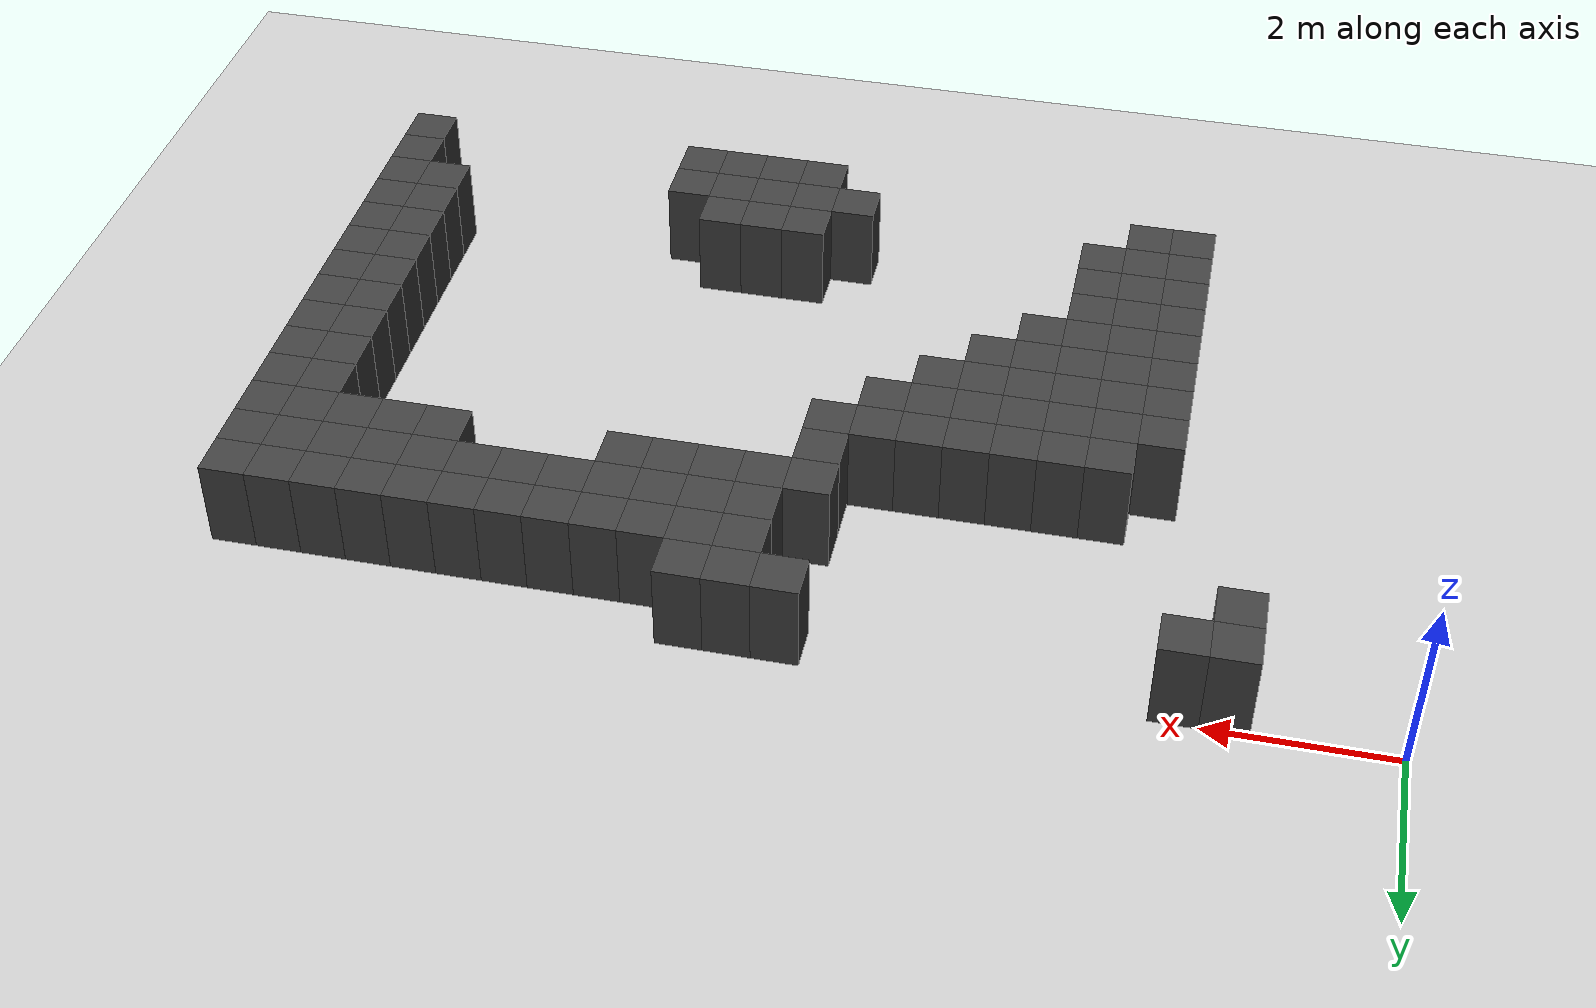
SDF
<sdf version="1.7">
 <world name="map_9405">
  <model name="ground_plane">
   <static>true</static>
   <link name="link">
    <collision name="collision">
     <geometry><plane><normal>0 0 1</normal><size>200 200</size></plane></geometry>
    </collision>
    <visual name="visual">
     <geometry><plane><normal>0 0 1</normal><size>200 200</size></plane></geometry>
     <material><ambient>0.8 0.8 0.8 1</ambient><diffuse>0.8 0.8 0.8 1</diffuse></material>
    </visual>
   </link>
  </model>
  <model name="maze_environment">
   <static>true</static>
   <link name="wall_437">
    <pose>1.750 -0.250 0.500 0 0 0</pose>
    <collision name="col"><geometry><box><size>0.5 0.5 1.0</size></box></geometry></collision>
    <visual name="vis">
     <geometry><box><size>0.5 0.5 1.0</size></box></geometry>
     <material><ambient>0.15 0.15 0.15 1</ambient><diffuse>0.25 0.25 0.25 1</diffuse></material>
    </visual>
   </link>
   <link name="wall_438">
    <pose>2.250 -0.250 0.500 0 0 0</pose>
    <collision name="col"><geometry><box><size>0.5 0.5 1.0</size></box></geometry></collision>
    <visual name="vis">
     <geometry><box><size>0.5 0.5 1.0</size></box></geometry>
     <material><ambient>0.15 0.15 0.15 1</ambient><diffuse>0.25 0.25 0.25 1</diffuse></material>
    </visual>
   </link>
   <link name="wall_439">
    <pose>6.250 -0.250 0.500 0 0 0</pose>
    <collision name="col"><geometry><box><size>0.5 0.5 1.0</size></box></geometry></collision>
    <visual name="vis">
     <geometry><box><size>0.5 0.5 1.0</size></box></geometry>
     <material><ambient>0.15 0.15 0.15 1</ambient><diffuse>0.25 0.25 0.25 1</diffuse></material>
    </visual>
   </link>
   <link name="wall_440">
    <pose>6.750 -0.250 0.500 0 0 0</pose>
    <collision name="col"><geometry><box><size>0.5 0.5 1.0</size></box></geometry></collision>
    <visual name="vis">
     <geometry><box><size>0.5 0.5 1.0</size></box></geometry>
     <material><ambient>0.15 0.15 0.15 1</ambient><diffuse>0.25 0.25 0.25 1</diffuse></material>
    </visual>
   </link>
   <link name="wall_441">
    <pose>7.250 -0.250 0.500 0 0 0</pose>
    <collision name="col"><geometry><box><size>0.5 0.5 1.0</size></box></geometry></collision>
    <visual name="vis">
     <geometry><box><size>0.5 0.5 1.0</size></box></geometry>
     <material><ambient>0.15 0.15 0.15 1</ambient><diffuse>0.25 0.25 0.25 1</diffuse></material>
    </visual>
   </link>
   <link name="wall_464">
    <pose>1.750 -0.750 0.500 0 0 0</pose>
    <collision name="col"><geometry><box><size>0.5 0.5 1.0</size></box></geometry></collision>
    <visual name="vis">
     <geometry><box><size>0.5 0.5 1.0</size></box></geometry>
     <material><ambient>0.15 0.15 0.15 1</ambient><diffuse>0.25 0.25 0.25 1</diffuse></material>
    </visual>
   </link>
   <link name="wall_465">
    <pose>6.750 -0.750 0.500 0 0 0</pose>
    <collision name="col"><geometry><box><size>0.5 0.5 1.0</size></box></geometry></collision>
    <visual name="vis">
     <geometry><box><size>0.5 0.5 1.0</size></box></geometry>
     <material><ambient>0.15 0.15 0.15 1</ambient><diffuse>0.25 0.25 0.25 1</diffuse></material>
    </visual>
   </link>
   <link name="wall_466">
    <pose>7.250 -0.750 0.500 0 0 0</pose>
    <collision name="col"><geometry><box><size>0.5 0.5 1.0</size></box></geometry></collision>
    <visual name="vis">
     <geometry><box><size>0.5 0.5 1.0</size></box></geometry>
     <material><ambient>0.15 0.15 0.15 1</ambient><diffuse>0.25 0.25 0.25 1</diffuse></material>
    </visual>
   </link>
   <link name="wall_467">
    <pose>7.750 -0.750 0.500 0 0 0</pose>
    <collision name="col"><geometry><box><size>0.5 0.5 1.0</size></box></geometry></collision>
    <visual name="vis">
     <geometry><box><size>0.5 0.5 1.0</size></box></geometry>
     <material><ambient>0.15 0.15 0.15 1</ambient><diffuse>0.25 0.25 0.25 1</diffuse></material>
    </visual>
   </link>
   <link name="wall_468">
    <pose>8.250 -0.750 0.500 0 0 0</pose>
    <collision name="col"><geometry><box><size>0.5 0.5 1.0</size></box></geometry></collision>
    <visual name="vis">
     <geometry><box><size>0.5 0.5 1.0</size></box></geometry>
     <material><ambient>0.15 0.15 0.15 1</ambient><diffuse>0.25 0.25 0.25 1</diffuse></material>
    </visual>
   </link>
   <link name="wall_469">
    <pose>8.750 -0.750 0.500 0 0 0</pose>
    <collision name="col"><geometry><box><size>0.5 0.5 1.0</size></box></geometry></collision>
    <visual name="vis">
     <geometry><box><size>0.5 0.5 1.0</size></box></geometry>
     <material><ambient>0.15 0.15 0.15 1</ambient><diffuse>0.25 0.25 0.25 1</diffuse></material>
    </visual>
   </link>
   <link name="wall_470">
    <pose>9.250 -0.750 0.500 0 0 0</pose>
    <collision name="col"><geometry><box><size>0.5 0.5 1.0</size></box></geometry></collision>
    <visual name="vis">
     <geometry><box><size>0.5 0.5 1.0</size></box></geometry>
     <material><ambient>0.15 0.15 0.15 1</ambient><diffuse>0.25 0.25 0.25 1</diffuse></material>
    </visual>
   </link>
   <link name="wall_471">
    <pose>9.750 -0.750 0.500 0 0 0</pose>
    <collision name="col"><geometry><box><size>0.5 0.5 1.0</size></box></geometry></collision>
    <visual name="vis">
     <geometry><box><size>0.5 0.5 1.0</size></box></geometry>
     <material><ambient>0.15 0.15 0.15 1</ambient><diffuse>0.25 0.25 0.25 1</diffuse></material>
    </visual>
   </link>
   <link name="wall_472">
    <pose>10.250 -0.750 0.500 0 0 0</pose>
    <collision name="col"><geometry><box><size>0.5 0.5 1.0</size></box></geometry></collision>
    <visual name="vis">
     <geometry><box><size>0.5 0.5 1.0</size></box></geometry>
     <material><ambient>0.15 0.15 0.15 1</ambient><diffuse>0.25 0.25 0.25 1</diffuse></material>
    </visual>
   </link>
   <link name="wall_473">
    <pose>10.750 -0.750 0.500 0 0 0</pose>
    <collision name="col"><geometry><box><size>0.5 0.5 1.0</size></box></geometry></collision>
    <visual name="vis">
     <geometry><box><size>0.5 0.5 1.0</size></box></geometry>
     <material><ambient>0.15 0.15 0.15 1</ambient><diffuse>0.25 0.25 0.25 1</diffuse></material>
    </visual>
   </link>
   <link name="wall_474">
    <pose>11.250 -0.750 0.500 0 0 0</pose>
    <collision name="col"><geometry><box><size>0.5 0.5 1.0</size></box></geometry></collision>
    <visual name="vis">
     <geometry><box><size>0.5 0.5 1.0</size></box></geometry>
     <material><ambient>0.15 0.15 0.15 1</ambient><diffuse>0.25 0.25 0.25 1</diffuse></material>
    </visual>
   </link>
   <link name="wall_475">
    <pose>11.750 -0.750 0.500 0 0 0</pose>
    <collision name="col"><geometry><box><size>0.5 0.5 1.0</size></box></geometry></collision>
    <visual name="vis">
     <geometry><box><size>0.5 0.5 1.0</size></box></geometry>
     <material><ambient>0.15 0.15 0.15 1</ambient><diffuse>0.25 0.25 0.25 1</diffuse></material>
    </visual>
   </link>
   <link name="wall_476">
    <pose>12.250 -0.750 0.500 0 0 0</pose>
    <collision name="col"><geometry><box><size>0.5 0.5 1.0</size></box></geometry></collision>
    <visual name="vis">
     <geometry><box><size>0.5 0.5 1.0</size></box></geometry>
     <material><ambient>0.15 0.15 0.15 1</ambient><diffuse>0.25 0.25 0.25 1</diffuse></material>
    </visual>
   </link>
   <link name="wall_489">
    <pose>6.750 -1.250 0.500 0 0 0</pose>
    <collision name="col"><geometry><box><size>0.5 0.5 1.0</size></box></geometry></collision>
    <visual name="vis">
     <geometry><box><size>0.5 0.5 1.0</size></box></geometry>
     <material><ambient>0.15 0.15 0.15 1</ambient><diffuse>0.25 0.25 0.25 1</diffuse></material>
    </visual>
   </link>
   <link name="wall_490">
    <pose>7.250 -1.250 0.500 0 0 0</pose>
    <collision name="col"><geometry><box><size>0.5 0.5 1.0</size></box></geometry></collision>
    <visual name="vis">
     <geometry><box><size>0.5 0.5 1.0</size></box></geometry>
     <material><ambient>0.15 0.15 0.15 1</ambient><diffuse>0.25 0.25 0.25 1</diffuse></material>
    </visual>
   </link>
   <link name="wall_491">
    <pose>7.750 -1.250 0.500 0 0 0</pose>
    <collision name="col"><geometry><box><size>0.5 0.5 1.0</size></box></geometry></collision>
    <visual name="vis">
     <geometry><box><size>0.5 0.5 1.0</size></box></geometry>
     <material><ambient>0.15 0.15 0.15 1</ambient><diffuse>0.25 0.25 0.25 1</diffuse></material>
    </visual>
   </link>
   <link name="wall_492">
    <pose>8.250 -1.250 0.500 0 0 0</pose>
    <collision name="col"><geometry><box><size>0.5 0.5 1.0</size></box></geometry></collision>
    <visual name="vis">
     <geometry><box><size>0.5 0.5 1.0</size></box></geometry>
     <material><ambient>0.15 0.15 0.15 1</ambient><diffuse>0.25 0.25 0.25 1</diffuse></material>
    </visual>
   </link>
   <link name="wall_493">
    <pose>8.750 -1.250 0.500 0 0 0</pose>
    <collision name="col"><geometry><box><size>0.5 0.5 1.0</size></box></geometry></collision>
    <visual name="vis">
     <geometry><box><size>0.5 0.5 1.0</size></box></geometry>
     <material><ambient>0.15 0.15 0.15 1</ambient><diffuse>0.25 0.25 0.25 1</diffuse></material>
    </visual>
   </link>
   <link name="wall_494">
    <pose>9.250 -1.250 0.500 0 0 0</pose>
    <collision name="col"><geometry><box><size>0.5 0.5 1.0</size></box></geometry></collision>
    <visual name="vis">
     <geometry><box><size>0.5 0.5 1.0</size></box></geometry>
     <material><ambient>0.15 0.15 0.15 1</ambient><diffuse>0.25 0.25 0.25 1</diffuse></material>
    </visual>
   </link>
   <link name="wall_495">
    <pose>9.750 -1.250 0.500 0 0 0</pose>
    <collision name="col"><geometry><box><size>0.5 0.5 1.0</size></box></geometry></collision>
    <visual name="vis">
     <geometry><box><size>0.5 0.5 1.0</size></box></geometry>
     <material><ambient>0.15 0.15 0.15 1</ambient><diffuse>0.25 0.25 0.25 1</diffuse></material>
    </visual>
   </link>
   <link name="wall_496">
    <pose>10.250 -1.250 0.500 0 0 0</pose>
    <collision name="col"><geometry><box><size>0.5 0.5 1.0</size></box></geometry></collision>
    <visual name="vis">
     <geometry><box><size>0.5 0.5 1.0</size></box></geometry>
     <material><ambient>0.15 0.15 0.15 1</ambient><diffuse>0.25 0.25 0.25 1</diffuse></material>
    </visual>
   </link>
   <link name="wall_497">
    <pose>10.750 -1.250 0.500 0 0 0</pose>
    <collision name="col"><geometry><box><size>0.5 0.5 1.0</size></box></geometry></collision>
    <visual name="vis">
     <geometry><box><size>0.5 0.5 1.0</size></box></geometry>
     <material><ambient>0.15 0.15 0.15 1</ambient><diffuse>0.25 0.25 0.25 1</diffuse></material>
    </visual>
   </link>
   <link name="wall_498">
    <pose>11.250 -1.250 0.500 0 0 0</pose>
    <collision name="col"><geometry><box><size>0.5 0.5 1.0</size></box></geometry></collision>
    <visual name="vis">
     <geometry><box><size>0.5 0.5 1.0</size></box></geometry>
     <material><ambient>0.15 0.15 0.15 1</ambient><diffuse>0.25 0.25 0.25 1</diffuse></material>
    </visual>
   </link>
   <link name="wall_499">
    <pose>11.750 -1.250 0.500 0 0 0</pose>
    <collision name="col"><geometry><box><size>0.5 0.5 1.0</size></box></geometry></collision>
    <visual name="vis">
     <geometry><box><size>0.5 0.5 1.0</size></box></geometry>
     <material><ambient>0.15 0.15 0.15 1</ambient><diffuse>0.25 0.25 0.25 1</diffuse></material>
    </visual>
   </link>
   <link name="wall_500">
    <pose>12.250 -1.250 0.500 0 0 0</pose>
    <collision name="col"><geometry><box><size>0.5 0.5 1.0</size></box></geometry></collision>
    <visual name="vis">
     <geometry><box><size>0.5 0.5 1.0</size></box></geometry>
     <material><ambient>0.15 0.15 0.15 1</ambient><diffuse>0.25 0.25 0.25 1</diffuse></material>
    </visual>
   </link>
   <link name="wall_507">
    <pose>6.250 -1.750 0.500 0 0 0</pose>
    <collision name="col"><geometry><box><size>0.5 0.5 1.0</size></box></geometry></collision>
    <visual name="vis">
     <geometry><box><size>0.5 0.5 1.0</size></box></geometry>
     <material><ambient>0.15 0.15 0.15 1</ambient><diffuse>0.25 0.25 0.25 1</diffuse></material>
    </visual>
   </link>
   <link name="wall_508">
    <pose>6.750 -1.750 0.500 0 0 0</pose>
    <collision name="col"><geometry><box><size>0.5 0.5 1.0</size></box></geometry></collision>
    <visual name="vis">
     <geometry><box><size>0.5 0.5 1.0</size></box></geometry>
     <material><ambient>0.15 0.15 0.15 1</ambient><diffuse>0.25 0.25 0.25 1</diffuse></material>
    </visual>
   </link>
   <link name="wall_509">
    <pose>7.250 -1.750 0.500 0 0 0</pose>
    <collision name="col"><geometry><box><size>0.5 0.5 1.0</size></box></geometry></collision>
    <visual name="vis">
     <geometry><box><size>0.5 0.5 1.0</size></box></geometry>
     <material><ambient>0.15 0.15 0.15 1</ambient><diffuse>0.25 0.25 0.25 1</diffuse></material>
    </visual>
   </link>
   <link name="wall_510">
    <pose>7.750 -1.750 0.500 0 0 0</pose>
    <collision name="col"><geometry><box><size>0.5 0.5 1.0</size></box></geometry></collision>
    <visual name="vis">
     <geometry><box><size>0.5 0.5 1.0</size></box></geometry>
     <material><ambient>0.15 0.15 0.15 1</ambient><diffuse>0.25 0.25 0.25 1</diffuse></material>
    </visual>
   </link>
   <link name="wall_511">
    <pose>8.250 -1.750 0.500 0 0 0</pose>
    <collision name="col"><geometry><box><size>0.5 0.5 1.0</size></box></geometry></collision>
    <visual name="vis">
     <geometry><box><size>0.5 0.5 1.0</size></box></geometry>
     <material><ambient>0.15 0.15 0.15 1</ambient><diffuse>0.25 0.25 0.25 1</diffuse></material>
    </visual>
   </link>
   <link name="wall_512">
    <pose>10.250 -1.750 0.500 0 0 0</pose>
    <collision name="col"><geometry><box><size>0.5 0.5 1.0</size></box></geometry></collision>
    <visual name="vis">
     <geometry><box><size>0.5 0.5 1.0</size></box></geometry>
     <material><ambient>0.15 0.15 0.15 1</ambient><diffuse>0.25 0.25 0.25 1</diffuse></material>
    </visual>
   </link>
   <link name="wall_513">
    <pose>10.750 -1.750 0.500 0 0 0</pose>
    <collision name="col"><geometry><box><size>0.5 0.5 1.0</size></box></geometry></collision>
    <visual name="vis">
     <geometry><box><size>0.5 0.5 1.0</size></box></geometry>
     <material><ambient>0.15 0.15 0.15 1</ambient><diffuse>0.25 0.25 0.25 1</diffuse></material>
    </visual>
   </link>
   <link name="wall_514">
    <pose>11.250 -1.750 0.500 0 0 0</pose>
    <collision name="col"><geometry><box><size>0.5 0.5 1.0</size></box></geometry></collision>
    <visual name="vis">
     <geometry><box><size>0.5 0.5 1.0</size></box></geometry>
     <material><ambient>0.15 0.15 0.15 1</ambient><diffuse>0.25 0.25 0.25 1</diffuse></material>
    </visual>
   </link>
   <link name="wall_515">
    <pose>11.750 -1.750 0.500 0 0 0</pose>
    <collision name="col"><geometry><box><size>0.5 0.5 1.0</size></box></geometry></collision>
    <visual name="vis">
     <geometry><box><size>0.5 0.5 1.0</size></box></geometry>
     <material><ambient>0.15 0.15 0.15 1</ambient><diffuse>0.25 0.25 0.25 1</diffuse></material>
    </visual>
   </link>
   <link name="wall_516">
    <pose>12.250 -1.750 0.500 0 0 0</pose>
    <collision name="col"><geometry><box><size>0.5 0.5 1.0</size></box></geometry></collision>
    <visual name="vis">
     <geometry><box><size>0.5 0.5 1.0</size></box></geometry>
     <material><ambient>0.15 0.15 0.15 1</ambient><diffuse>0.25 0.25 0.25 1</diffuse></material>
    </visual>
   </link>
   <link name="wall_523">
    <pose>6.250 -2.250 0.500 0 0 0</pose>
    <collision name="col"><geometry><box><size>0.5 0.5 1.0</size></box></geometry></collision>
    <visual name="vis">
     <geometry><box><size>0.5 0.5 1.0</size></box></geometry>
     <material><ambient>0.15 0.15 0.15 1</ambient><diffuse>0.25 0.25 0.25 1</diffuse></material>
    </visual>
   </link>
   <link name="wall_524">
    <pose>11.750 -2.250 0.500 0 0 0</pose>
    <collision name="col"><geometry><box><size>0.5 0.5 1.0</size></box></geometry></collision>
    <visual name="vis">
     <geometry><box><size>0.5 0.5 1.0</size></box></geometry>
     <material><ambient>0.15 0.15 0.15 1</ambient><diffuse>0.25 0.25 0.25 1</diffuse></material>
    </visual>
   </link>
   <link name="wall_525">
    <pose>12.250 -2.250 0.500 0 0 0</pose>
    <collision name="col"><geometry><box><size>0.5 0.5 1.0</size></box></geometry></collision>
    <visual name="vis">
     <geometry><box><size>0.5 0.5 1.0</size></box></geometry>
     <material><ambient>0.15 0.15 0.15 1</ambient><diffuse>0.25 0.25 0.25 1</diffuse></material>
    </visual>
   </link>
   <link name="wall_535">
    <pose>3.250 -2.750 0.500 0 0 0</pose>
    <collision name="col"><geometry><box><size>0.5 0.5 1.0</size></box></geometry></collision>
    <visual name="vis">
     <geometry><box><size>0.5 0.5 1.0</size></box></geometry>
     <material><ambient>0.15 0.15 0.15 1</ambient><diffuse>0.25 0.25 0.25 1</diffuse></material>
    </visual>
   </link>
   <link name="wall_536">
    <pose>3.750 -2.750 0.500 0 0 0</pose>
    <collision name="col"><geometry><box><size>0.5 0.5 1.0</size></box></geometry></collision>
    <visual name="vis">
     <geometry><box><size>0.5 0.5 1.0</size></box></geometry>
     <material><ambient>0.15 0.15 0.15 1</ambient><diffuse>0.25 0.25 0.25 1</diffuse></material>
    </visual>
   </link>
   <link name="wall_537">
    <pose>4.250 -2.750 0.500 0 0 0</pose>
    <collision name="col"><geometry><box><size>0.5 0.5 1.0</size></box></geometry></collision>
    <visual name="vis">
     <geometry><box><size>0.5 0.5 1.0</size></box></geometry>
     <material><ambient>0.15 0.15 0.15 1</ambient><diffuse>0.25 0.25 0.25 1</diffuse></material>
    </visual>
   </link>
   <link name="wall_538">
    <pose>4.750 -2.750 0.500 0 0 0</pose>
    <collision name="col"><geometry><box><size>0.5 0.5 1.0</size></box></geometry></collision>
    <visual name="vis">
     <geometry><box><size>0.5 0.5 1.0</size></box></geometry>
     <material><ambient>0.15 0.15 0.15 1</ambient><diffuse>0.25 0.25 0.25 1</diffuse></material>
    </visual>
   </link>
   <link name="wall_539">
    <pose>5.250 -2.750 0.500 0 0 0</pose>
    <collision name="col"><geometry><box><size>0.5 0.5 1.0</size></box></geometry></collision>
    <visual name="vis">
     <geometry><box><size>0.5 0.5 1.0</size></box></geometry>
     <material><ambient>0.15 0.15 0.15 1</ambient><diffuse>0.25 0.25 0.25 1</diffuse></material>
    </visual>
   </link>
   <link name="wall_540">
    <pose>5.750 -2.750 0.500 0 0 0</pose>
    <collision name="col"><geometry><box><size>0.5 0.5 1.0</size></box></geometry></collision>
    <visual name="vis">
     <geometry><box><size>0.5 0.5 1.0</size></box></geometry>
     <material><ambient>0.15 0.15 0.15 1</ambient><diffuse>0.25 0.25 0.25 1</diffuse></material>
    </visual>
   </link>
   <link name="wall_541">
    <pose>6.250 -2.750 0.500 0 0 0</pose>
    <collision name="col"><geometry><box><size>0.5 0.5 1.0</size></box></geometry></collision>
    <visual name="vis">
     <geometry><box><size>0.5 0.5 1.0</size></box></geometry>
     <material><ambient>0.15 0.15 0.15 1</ambient><diffuse>0.25 0.25 0.25 1</diffuse></material>
    </visual>
   </link>
   <link name="wall_542">
    <pose>11.750 -2.750 0.500 0 0 0</pose>
    <collision name="col"><geometry><box><size>0.5 0.5 1.0</size></box></geometry></collision>
    <visual name="vis">
     <geometry><box><size>0.5 0.5 1.0</size></box></geometry>
     <material><ambient>0.15 0.15 0.15 1</ambient><diffuse>0.25 0.25 0.25 1</diffuse></material>
    </visual>
   </link>
   <link name="wall_543">
    <pose>12.250 -2.750 0.500 0 0 0</pose>
    <collision name="col"><geometry><box><size>0.5 0.5 1.0</size></box></geometry></collision>
    <visual name="vis">
     <geometry><box><size>0.5 0.5 1.0</size></box></geometry>
     <material><ambient>0.15 0.15 0.15 1</ambient><diffuse>0.25 0.25 0.25 1</diffuse></material>
    </visual>
   </link>
   <link name="wall_552">
    <pose>2.750 -3.250 0.500 0 0 0</pose>
    <collision name="col"><geometry><box><size>0.5 0.5 1.0</size></box></geometry></collision>
    <visual name="vis">
     <geometry><box><size>0.5 0.5 1.0</size></box></geometry>
     <material><ambient>0.15 0.15 0.15 1</ambient><diffuse>0.25 0.25 0.25 1</diffuse></material>
    </visual>
   </link>
   <link name="wall_553">
    <pose>3.250 -3.250 0.500 0 0 0</pose>
    <collision name="col"><geometry><box><size>0.5 0.5 1.0</size></box></geometry></collision>
    <visual name="vis">
     <geometry><box><size>0.5 0.5 1.0</size></box></geometry>
     <material><ambient>0.15 0.15 0.15 1</ambient><diffuse>0.25 0.25 0.25 1</diffuse></material>
    </visual>
   </link>
   <link name="wall_554">
    <pose>3.750 -3.250 0.500 0 0 0</pose>
    <collision name="col"><geometry><box><size>0.5 0.5 1.0</size></box></geometry></collision>
    <visual name="vis">
     <geometry><box><size>0.5 0.5 1.0</size></box></geometry>
     <material><ambient>0.15 0.15 0.15 1</ambient><diffuse>0.25 0.25 0.25 1</diffuse></material>
    </visual>
   </link>
   <link name="wall_555">
    <pose>4.250 -3.250 0.500 0 0 0</pose>
    <collision name="col"><geometry><box><size>0.5 0.5 1.0</size></box></geometry></collision>
    <visual name="vis">
     <geometry><box><size>0.5 0.5 1.0</size></box></geometry>
     <material><ambient>0.15 0.15 0.15 1</ambient><diffuse>0.25 0.25 0.25 1</diffuse></material>
    </visual>
   </link>
   <link name="wall_556">
    <pose>4.750 -3.250 0.500 0 0 0</pose>
    <collision name="col"><geometry><box><size>0.5 0.5 1.0</size></box></geometry></collision>
    <visual name="vis">
     <geometry><box><size>0.5 0.5 1.0</size></box></geometry>
     <material><ambient>0.15 0.15 0.15 1</ambient><diffuse>0.25 0.25 0.25 1</diffuse></material>
    </visual>
   </link>
   <link name="wall_557">
    <pose>5.250 -3.250 0.500 0 0 0</pose>
    <collision name="col"><geometry><box><size>0.5 0.5 1.0</size></box></geometry></collision>
    <visual name="vis">
     <geometry><box><size>0.5 0.5 1.0</size></box></geometry>
     <material><ambient>0.15 0.15 0.15 1</ambient><diffuse>0.25 0.25 0.25 1</diffuse></material>
    </visual>
   </link>
   <link name="wall_558">
    <pose>5.750 -3.250 0.500 0 0 0</pose>
    <collision name="col"><geometry><box><size>0.5 0.5 1.0</size></box></geometry></collision>
    <visual name="vis">
     <geometry><box><size>0.5 0.5 1.0</size></box></geometry>
     <material><ambient>0.15 0.15 0.15 1</ambient><diffuse>0.25 0.25 0.25 1</diffuse></material>
    </visual>
   </link>
   <link name="wall_559">
    <pose>11.750 -3.250 0.500 0 0 0</pose>
    <collision name="col"><geometry><box><size>0.5 0.5 1.0</size></box></geometry></collision>
    <visual name="vis">
     <geometry><box><size>0.5 0.5 1.0</size></box></geometry>
     <material><ambient>0.15 0.15 0.15 1</ambient><diffuse>0.25 0.25 0.25 1</diffuse></material>
    </visual>
   </link>
   <link name="wall_560">
    <pose>12.250 -3.250 0.500 0 0 0</pose>
    <collision name="col"><geometry><box><size>0.5 0.5 1.0</size></box></geometry></collision>
    <visual name="vis">
     <geometry><box><size>0.5 0.5 1.0</size></box></geometry>
     <material><ambient>0.15 0.15 0.15 1</ambient><diffuse>0.25 0.25 0.25 1</diffuse></material>
    </visual>
   </link>
   <link name="wall_570">
    <pose>2.750 -3.750 0.500 0 0 0</pose>
    <collision name="col"><geometry><box><size>0.5 0.5 1.0</size></box></geometry></collision>
    <visual name="vis">
     <geometry><box><size>0.5 0.5 1.0</size></box></geometry>
     <material><ambient>0.15 0.15 0.15 1</ambient><diffuse>0.25 0.25 0.25 1</diffuse></material>
    </visual>
   </link>
   <link name="wall_571">
    <pose>3.250 -3.750 0.500 0 0 0</pose>
    <collision name="col"><geometry><box><size>0.5 0.5 1.0</size></box></geometry></collision>
    <visual name="vis">
     <geometry><box><size>0.5 0.5 1.0</size></box></geometry>
     <material><ambient>0.15 0.15 0.15 1</ambient><diffuse>0.25 0.25 0.25 1</diffuse></material>
    </visual>
   </link>
   <link name="wall_572">
    <pose>3.750 -3.750 0.500 0 0 0</pose>
    <collision name="col"><geometry><box><size>0.5 0.5 1.0</size></box></geometry></collision>
    <visual name="vis">
     <geometry><box><size>0.5 0.5 1.0</size></box></geometry>
     <material><ambient>0.15 0.15 0.15 1</ambient><diffuse>0.25 0.25 0.25 1</diffuse></material>
    </visual>
   </link>
   <link name="wall_573">
    <pose>4.250 -3.750 0.500 0 0 0</pose>
    <collision name="col"><geometry><box><size>0.5 0.5 1.0</size></box></geometry></collision>
    <visual name="vis">
     <geometry><box><size>0.5 0.5 1.0</size></box></geometry>
     <material><ambient>0.15 0.15 0.15 1</ambient><diffuse>0.25 0.25 0.25 1</diffuse></material>
    </visual>
   </link>
   <link name="wall_574">
    <pose>4.750 -3.750 0.500 0 0 0</pose>
    <collision name="col"><geometry><box><size>0.5 0.5 1.0</size></box></geometry></collision>
    <visual name="vis">
     <geometry><box><size>0.5 0.5 1.0</size></box></geometry>
     <material><ambient>0.15 0.15 0.15 1</ambient><diffuse>0.25 0.25 0.25 1</diffuse></material>
    </visual>
   </link>
   <link name="wall_575">
    <pose>5.250 -3.750 0.500 0 0 0</pose>
    <collision name="col"><geometry><box><size>0.5 0.5 1.0</size></box></geometry></collision>
    <visual name="vis">
     <geometry><box><size>0.5 0.5 1.0</size></box></geometry>
     <material><ambient>0.15 0.15 0.15 1</ambient><diffuse>0.25 0.25 0.25 1</diffuse></material>
    </visual>
   </link>
   <link name="wall_576">
    <pose>11.750 -3.750 0.500 0 0 0</pose>
    <collision name="col"><geometry><box><size>0.5 0.5 1.0</size></box></geometry></collision>
    <visual name="vis">
     <geometry><box><size>0.5 0.5 1.0</size></box></geometry>
     <material><ambient>0.15 0.15 0.15 1</ambient><diffuse>0.25 0.25 0.25 1</diffuse></material>
    </visual>
   </link>
   <link name="wall_577">
    <pose>12.250 -3.750 0.500 0 0 0</pose>
    <collision name="col"><geometry><box><size>0.5 0.5 1.0</size></box></geometry></collision>
    <visual name="vis">
     <geometry><box><size>0.5 0.5 1.0</size></box></geometry>
     <material><ambient>0.15 0.15 0.15 1</ambient><diffuse>0.25 0.25 0.25 1</diffuse></material>
    </visual>
   </link>
   <link name="wall_585">
    <pose>2.750 -4.250 0.500 0 0 0</pose>
    <collision name="col"><geometry><box><size>0.5 0.5 1.0</size></box></geometry></collision>
    <visual name="vis">
     <geometry><box><size>0.5 0.5 1.0</size></box></geometry>
     <material><ambient>0.15 0.15 0.15 1</ambient><diffuse>0.25 0.25 0.25 1</diffuse></material>
    </visual>
   </link>
   <link name="wall_586">
    <pose>3.250 -4.250 0.500 0 0 0</pose>
    <collision name="col"><geometry><box><size>0.5 0.5 1.0</size></box></geometry></collision>
    <visual name="vis">
     <geometry><box><size>0.5 0.5 1.0</size></box></geometry>
     <material><ambient>0.15 0.15 0.15 1</ambient><diffuse>0.25 0.25 0.25 1</diffuse></material>
    </visual>
   </link>
   <link name="wall_587">
    <pose>3.750 -4.250 0.500 0 0 0</pose>
    <collision name="col"><geometry><box><size>0.5 0.5 1.0</size></box></geometry></collision>
    <visual name="vis">
     <geometry><box><size>0.5 0.5 1.0</size></box></geometry>
     <material><ambient>0.15 0.15 0.15 1</ambient><diffuse>0.25 0.25 0.25 1</diffuse></material>
    </visual>
   </link>
   <link name="wall_588">
    <pose>4.250 -4.250 0.500 0 0 0</pose>
    <collision name="col"><geometry><box><size>0.5 0.5 1.0</size></box></geometry></collision>
    <visual name="vis">
     <geometry><box><size>0.5 0.5 1.0</size></box></geometry>
     <material><ambient>0.15 0.15 0.15 1</ambient><diffuse>0.25 0.25 0.25 1</diffuse></material>
    </visual>
   </link>
   <link name="wall_589">
    <pose>4.750 -4.250 0.500 0 0 0</pose>
    <collision name="col"><geometry><box><size>0.5 0.5 1.0</size></box></geometry></collision>
    <visual name="vis">
     <geometry><box><size>0.5 0.5 1.0</size></box></geometry>
     <material><ambient>0.15 0.15 0.15 1</ambient><diffuse>0.25 0.25 0.25 1</diffuse></material>
    </visual>
   </link>
   <link name="wall_590">
    <pose>11.750 -4.250 0.500 0 0 0</pose>
    <collision name="col"><geometry><box><size>0.5 0.5 1.0</size></box></geometry></collision>
    <visual name="vis">
     <geometry><box><size>0.5 0.5 1.0</size></box></geometry>
     <material><ambient>0.15 0.15 0.15 1</ambient><diffuse>0.25 0.25 0.25 1</diffuse></material>
    </visual>
   </link>
   <link name="wall_591">
    <pose>12.250 -4.250 0.500 0 0 0</pose>
    <collision name="col"><geometry><box><size>0.5 0.5 1.0</size></box></geometry></collision>
    <visual name="vis">
     <geometry><box><size>0.5 0.5 1.0</size></box></geometry>
     <material><ambient>0.15 0.15 0.15 1</ambient><diffuse>0.25 0.25 0.25 1</diffuse></material>
    </visual>
   </link>
   <link name="wall_597">
    <pose>2.750 -4.750 0.500 0 0 0</pose>
    <collision name="col"><geometry><box><size>0.5 0.5 1.0</size></box></geometry></collision>
    <visual name="vis">
     <geometry><box><size>0.5 0.5 1.0</size></box></geometry>
     <material><ambient>0.15 0.15 0.15 1</ambient><diffuse>0.25 0.25 0.25 1</diffuse></material>
    </visual>
   </link>
   <link name="wall_598">
    <pose>3.250 -4.750 0.500 0 0 0</pose>
    <collision name="col"><geometry><box><size>0.5 0.5 1.0</size></box></geometry></collision>
    <visual name="vis">
     <geometry><box><size>0.5 0.5 1.0</size></box></geometry>
     <material><ambient>0.15 0.15 0.15 1</ambient><diffuse>0.25 0.25 0.25 1</diffuse></material>
    </visual>
   </link>
   <link name="wall_599">
    <pose>3.750 -4.750 0.500 0 0 0</pose>
    <collision name="col"><geometry><box><size>0.5 0.5 1.0</size></box></geometry></collision>
    <visual name="vis">
     <geometry><box><size>0.5 0.5 1.0</size></box></geometry>
     <material><ambient>0.15 0.15 0.15 1</ambient><diffuse>0.25 0.25 0.25 1</diffuse></material>
    </visual>
   </link>
   <link name="wall_600">
    <pose>4.250 -4.750 0.500 0 0 0</pose>
    <collision name="col"><geometry><box><size>0.5 0.5 1.0</size></box></geometry></collision>
    <visual name="vis">
     <geometry><box><size>0.5 0.5 1.0</size></box></geometry>
     <material><ambient>0.15 0.15 0.15 1</ambient><diffuse>0.25 0.25 0.25 1</diffuse></material>
    </visual>
   </link>
   <link name="wall_601">
    <pose>11.750 -4.750 0.500 0 0 0</pose>
    <collision name="col"><geometry><box><size>0.5 0.5 1.0</size></box></geometry></collision>
    <visual name="vis">
     <geometry><box><size>0.5 0.5 1.0</size></box></geometry>
     <material><ambient>0.15 0.15 0.15 1</ambient><diffuse>0.25 0.25 0.25 1</diffuse></material>
    </visual>
   </link>
   <link name="wall_602">
    <pose>12.250 -4.750 0.500 0 0 0</pose>
    <collision name="col"><geometry><box><size>0.5 0.5 1.0</size></box></geometry></collision>
    <visual name="vis">
     <geometry><box><size>0.5 0.5 1.0</size></box></geometry>
     <material><ambient>0.15 0.15 0.15 1</ambient><diffuse>0.25 0.25 0.25 1</diffuse></material>
    </visual>
   </link>
   <link name="wall_608">
    <pose>2.750 -5.250 0.500 0 0 0</pose>
    <collision name="col"><geometry><box><size>0.5 0.5 1.0</size></box></geometry></collision>
    <visual name="vis">
     <geometry><box><size>0.5 0.5 1.0</size></box></geometry>
     <material><ambient>0.15 0.15 0.15 1</ambient><diffuse>0.25 0.25 0.25 1</diffuse></material>
    </visual>
   </link>
   <link name="wall_609">
    <pose>3.250 -5.250 0.500 0 0 0</pose>
    <collision name="col"><geometry><box><size>0.5 0.5 1.0</size></box></geometry></collision>
    <visual name="vis">
     <geometry><box><size>0.5 0.5 1.0</size></box></geometry>
     <material><ambient>0.15 0.15 0.15 1</ambient><diffuse>0.25 0.25 0.25 1</diffuse></material>
    </visual>
   </link>
   <link name="wall_610">
    <pose>3.750 -5.250 0.500 0 0 0</pose>
    <collision name="col"><geometry><box><size>0.5 0.5 1.0</size></box></geometry></collision>
    <visual name="vis">
     <geometry><box><size>0.5 0.5 1.0</size></box></geometry>
     <material><ambient>0.15 0.15 0.15 1</ambient><diffuse>0.25 0.25 0.25 1</diffuse></material>
    </visual>
   </link>
   <link name="wall_611">
    <pose>11.750 -5.250 0.500 0 0 0</pose>
    <collision name="col"><geometry><box><size>0.5 0.5 1.0</size></box></geometry></collision>
    <visual name="vis">
     <geometry><box><size>0.5 0.5 1.0</size></box></geometry>
     <material><ambient>0.15 0.15 0.15 1</ambient><diffuse>0.25 0.25 0.25 1</diffuse></material>
    </visual>
   </link>
   <link name="wall_612">
    <pose>12.250 -5.250 0.500 0 0 0</pose>
    <collision name="col"><geometry><box><size>0.5 0.5 1.0</size></box></geometry></collision>
    <visual name="vis">
     <geometry><box><size>0.5 0.5 1.0</size></box></geometry>
     <material><ambient>0.15 0.15 0.15 1</ambient><diffuse>0.25 0.25 0.25 1</diffuse></material>
    </visual>
   </link>
   <link name="wall_619">
    <pose>2.750 -5.750 0.500 0 0 0</pose>
    <collision name="col"><geometry><box><size>0.5 0.5 1.0</size></box></geometry></collision>
    <visual name="vis">
     <geometry><box><size>0.5 0.5 1.0</size></box></geometry>
     <material><ambient>0.15 0.15 0.15 1</ambient><diffuse>0.25 0.25 0.25 1</diffuse></material>
    </visual>
   </link>
   <link name="wall_620">
    <pose>3.250 -5.750 0.500 0 0 0</pose>
    <collision name="col"><geometry><box><size>0.5 0.5 1.0</size></box></geometry></collision>
    <visual name="vis">
     <geometry><box><size>0.5 0.5 1.0</size></box></geometry>
     <material><ambient>0.15 0.15 0.15 1</ambient><diffuse>0.25 0.25 0.25 1</diffuse></material>
    </visual>
   </link>
   <link name="wall_621">
    <pose>3.750 -5.750 0.500 0 0 0</pose>
    <collision name="col"><geometry><box><size>0.5 0.5 1.0</size></box></geometry></collision>
    <visual name="vis">
     <geometry><box><size>0.5 0.5 1.0</size></box></geometry>
     <material><ambient>0.15 0.15 0.15 1</ambient><diffuse>0.25 0.25 0.25 1</diffuse></material>
    </visual>
   </link>
   <link name="wall_622">
    <pose>11.750 -5.750 0.500 0 0 0</pose>
    <collision name="col"><geometry><box><size>0.5 0.5 1.0</size></box></geometry></collision>
    <visual name="vis">
     <geometry><box><size>0.5 0.5 1.0</size></box></geometry>
     <material><ambient>0.15 0.15 0.15 1</ambient><diffuse>0.25 0.25 0.25 1</diffuse></material>
    </visual>
   </link>
   <link name="wall_623">
    <pose>12.250 -5.750 0.500 0 0 0</pose>
    <collision name="col"><geometry><box><size>0.5 0.5 1.0</size></box></geometry></collision>
    <visual name="vis">
     <geometry><box><size>0.5 0.5 1.0</size></box></geometry>
     <material><ambient>0.15 0.15 0.15 1</ambient><diffuse>0.25 0.25 0.25 1</diffuse></material>
    </visual>
   </link>
   <link name="wall_630">
    <pose>2.750 -6.250 0.500 0 0 0</pose>
    <collision name="col"><geometry><box><size>0.5 0.5 1.0</size></box></geometry></collision>
    <visual name="vis">
     <geometry><box><size>0.5 0.5 1.0</size></box></geometry>
     <material><ambient>0.15 0.15 0.15 1</ambient><diffuse>0.25 0.25 0.25 1</diffuse></material>
    </visual>
   </link>
   <link name="wall_631">
    <pose>3.250 -6.250 0.500 0 0 0</pose>
    <collision name="col"><geometry><box><size>0.5 0.5 1.0</size></box></geometry></collision>
    <visual name="vis">
     <geometry><box><size>0.5 0.5 1.0</size></box></geometry>
     <material><ambient>0.15 0.15 0.15 1</ambient><diffuse>0.25 0.25 0.25 1</diffuse></material>
    </visual>
   </link>
   <link name="wall_632">
    <pose>3.750 -6.250 0.500 0 0 0</pose>
    <collision name="col"><geometry><box><size>0.5 0.5 1.0</size></box></geometry></collision>
    <visual name="vis">
     <geometry><box><size>0.5 0.5 1.0</size></box></geometry>
     <material><ambient>0.15 0.15 0.15 1</ambient><diffuse>0.25 0.25 0.25 1</diffuse></material>
    </visual>
   </link>
   <link name="wall_633">
    <pose>7.250 -6.250 0.500 0 0 0</pose>
    <collision name="col"><geometry><box><size>0.5 0.5 1.0</size></box></geometry></collision>
    <visual name="vis">
     <geometry><box><size>0.5 0.5 1.0</size></box></geometry>
     <material><ambient>0.15 0.15 0.15 1</ambient><diffuse>0.25 0.25 0.25 1</diffuse></material>
    </visual>
   </link>
   <link name="wall_634">
    <pose>7.750 -6.250 0.500 0 0 0</pose>
    <collision name="col"><geometry><box><size>0.5 0.5 1.0</size></box></geometry></collision>
    <visual name="vis">
     <geometry><box><size>0.5 0.5 1.0</size></box></geometry>
     <material><ambient>0.15 0.15 0.15 1</ambient><diffuse>0.25 0.25 0.25 1</diffuse></material>
    </visual>
   </link>
   <link name="wall_635">
    <pose>8.250 -6.250 0.500 0 0 0</pose>
    <collision name="col"><geometry><box><size>0.5 0.5 1.0</size></box></geometry></collision>
    <visual name="vis">
     <geometry><box><size>0.5 0.5 1.0</size></box></geometry>
     <material><ambient>0.15 0.15 0.15 1</ambient><diffuse>0.25 0.25 0.25 1</diffuse></material>
    </visual>
   </link>
   <link name="wall_636">
    <pose>11.750 -6.250 0.500 0 0 0</pose>
    <collision name="col"><geometry><box><size>0.5 0.5 1.0</size></box></geometry></collision>
    <visual name="vis">
     <geometry><box><size>0.5 0.5 1.0</size></box></geometry>
     <material><ambient>0.15 0.15 0.15 1</ambient><diffuse>0.25 0.25 0.25 1</diffuse></material>
    </visual>
   </link>
   <link name="wall_637">
    <pose>12.250 -6.250 0.500 0 0 0</pose>
    <collision name="col"><geometry><box><size>0.5 0.5 1.0</size></box></geometry></collision>
    <visual name="vis">
     <geometry><box><size>0.5 0.5 1.0</size></box></geometry>
     <material><ambient>0.15 0.15 0.15 1</ambient><diffuse>0.25 0.25 0.25 1</diffuse></material>
    </visual>
   </link>
   <link name="wall_648">
    <pose>2.750 -6.750 0.500 0 0 0</pose>
    <collision name="col"><geometry><box><size>0.5 0.5 1.0</size></box></geometry></collision>
    <visual name="vis">
     <geometry><box><size>0.5 0.5 1.0</size></box></geometry>
     <material><ambient>0.15 0.15 0.15 1</ambient><diffuse>0.25 0.25 0.25 1</diffuse></material>
    </visual>
   </link>
   <link name="wall_649">
    <pose>3.250 -6.750 0.500 0 0 0</pose>
    <collision name="col"><geometry><box><size>0.5 0.5 1.0</size></box></geometry></collision>
    <visual name="vis">
     <geometry><box><size>0.5 0.5 1.0</size></box></geometry>
     <material><ambient>0.15 0.15 0.15 1</ambient><diffuse>0.25 0.25 0.25 1</diffuse></material>
    </visual>
   </link>
   <link name="wall_650">
    <pose>6.750 -6.750 0.500 0 0 0</pose>
    <collision name="col"><geometry><box><size>0.5 0.5 1.0</size></box></geometry></collision>
    <visual name="vis">
     <geometry><box><size>0.5 0.5 1.0</size></box></geometry>
     <material><ambient>0.15 0.15 0.15 1</ambient><diffuse>0.25 0.25 0.25 1</diffuse></material>
    </visual>
   </link>
   <link name="wall_651">
    <pose>7.250 -6.750 0.500 0 0 0</pose>
    <collision name="col"><geometry><box><size>0.5 0.5 1.0</size></box></geometry></collision>
    <visual name="vis">
     <geometry><box><size>0.5 0.5 1.0</size></box></geometry>
     <material><ambient>0.15 0.15 0.15 1</ambient><diffuse>0.25 0.25 0.25 1</diffuse></material>
    </visual>
   </link>
   <link name="wall_652">
    <pose>7.750 -6.750 0.500 0 0 0</pose>
    <collision name="col"><geometry><box><size>0.5 0.5 1.0</size></box></geometry></collision>
    <visual name="vis">
     <geometry><box><size>0.5 0.5 1.0</size></box></geometry>
     <material><ambient>0.15 0.15 0.15 1</ambient><diffuse>0.25 0.25 0.25 1</diffuse></material>
    </visual>
   </link>
   <link name="wall_653">
    <pose>8.250 -6.750 0.500 0 0 0</pose>
    <collision name="col"><geometry><box><size>0.5 0.5 1.0</size></box></geometry></collision>
    <visual name="vis">
     <geometry><box><size>0.5 0.5 1.0</size></box></geometry>
     <material><ambient>0.15 0.15 0.15 1</ambient><diffuse>0.25 0.25 0.25 1</diffuse></material>
    </visual>
   </link>
   <link name="wall_654">
    <pose>8.750 -6.750 0.500 0 0 0</pose>
    <collision name="col"><geometry><box><size>0.5 0.5 1.0</size></box></geometry></collision>
    <visual name="vis">
     <geometry><box><size>0.5 0.5 1.0</size></box></geometry>
     <material><ambient>0.15 0.15 0.15 1</ambient><diffuse>0.25 0.25 0.25 1</diffuse></material>
    </visual>
   </link>
   <link name="wall_655">
    <pose>12.250 -6.750 0.500 0 0 0</pose>
    <collision name="col"><geometry><box><size>0.5 0.5 1.0</size></box></geometry></collision>
    <visual name="vis">
     <geometry><box><size>0.5 0.5 1.0</size></box></geometry>
     <material><ambient>0.15 0.15 0.15 1</ambient><diffuse>0.25 0.25 0.25 1</diffuse></material>
    </visual>
   </link>
   <link name="wall_669">
    <pose>7.250 -7.250 0.500 0 0 0</pose>
    <collision name="col"><geometry><box><size>0.5 0.5 1.0</size></box></geometry></collision>
    <visual name="vis">
     <geometry><box><size>0.5 0.5 1.0</size></box></geometry>
     <material><ambient>0.15 0.15 0.15 1</ambient><diffuse>0.25 0.25 0.25 1</diffuse></material>
    </visual>
   </link>
   <link name="wall_670">
    <pose>7.750 -7.250 0.500 0 0 0</pose>
    <collision name="col"><geometry><box><size>0.5 0.5 1.0</size></box></geometry></collision>
    <visual name="vis">
     <geometry><box><size>0.5 0.5 1.0</size></box></geometry>
     <material><ambient>0.15 0.15 0.15 1</ambient><diffuse>0.25 0.25 0.25 1</diffuse></material>
    </visual>
   </link>
   <link name="wall_671">
    <pose>8.250 -7.250 0.500 0 0 0</pose>
    <collision name="col"><geometry><box><size>0.5 0.5 1.0</size></box></geometry></collision>
    <visual name="vis">
     <geometry><box><size>0.5 0.5 1.0</size></box></geometry>
     <material><ambient>0.15 0.15 0.15 1</ambient><diffuse>0.25 0.25 0.25 1</diffuse></material>
    </visual>
   </link>
   <link name="wall_672">
    <pose>8.750 -7.250 0.500 0 0 0</pose>
    <collision name="col"><geometry><box><size>0.5 0.5 1.0</size></box></geometry></collision>
    <visual name="vis">
     <geometry><box><size>0.5 0.5 1.0</size></box></geometry>
     <material><ambient>0.15 0.15 0.15 1</ambient><diffuse>0.25 0.25 0.25 1</diffuse></material>
    </visual>
   </link>
   <link name="wall_673">
    <pose>12.250 -7.250 0.500 0 0 0</pose>
    <collision name="col"><geometry><box><size>0.5 0.5 1.0</size></box></geometry></collision>
    <visual name="vis">
     <geometry><box><size>0.5 0.5 1.0</size></box></geometry>
     <material><ambient>0.15 0.15 0.15 1</ambient><diffuse>0.25 0.25 0.25 1</diffuse></material>
    </visual>
   </link>
  </model>
 </world>
</sdf>
